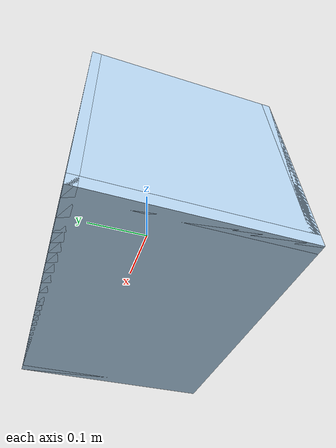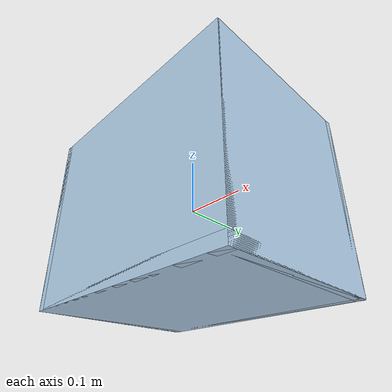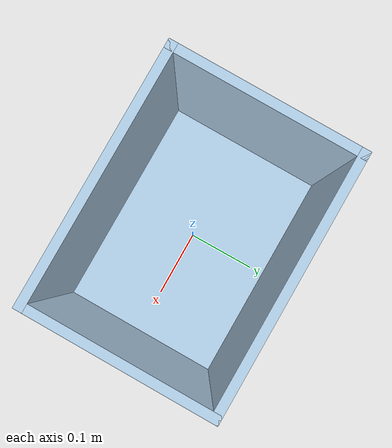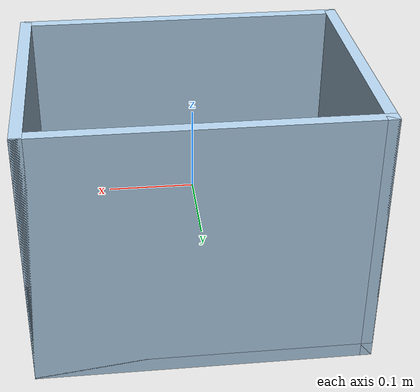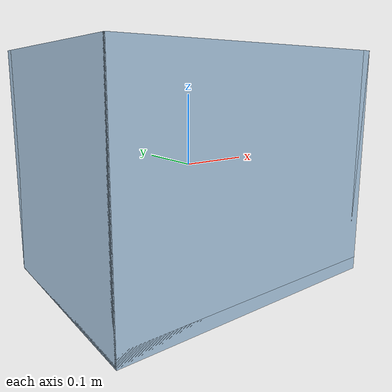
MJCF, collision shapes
<mujoco model="container_b16_40x30x32cm">
  <asset>
    <mesh name="container_b16_mesh" file="meshes/Container_B16_40x30x32cm_PR_V_NVD_01.usd" scale="1 1 1"/>
    <material name="container_b16_visual_mat" rgba="0.70 0.82 0.92 1" specular="0.25" shininess="0.18"/>
    <material name="container_b16_collision_mat" rgba="0.70 0.82 0.92 0.30" specular="0.05" shininess="0.05"/>
  </asset>

  <worldbody>
    <body>
      <body name="object">
        <inertial pos="0 0 0" mass="0.35" diaginertia="0.0040 0.0060 0.0070"/>

        <geom name="visual"
              type="mesh"
              mesh="container_b16_mesh"
              material="container_b16_visual_mat"
              contype="0"
              conaffinity="0"
              group="1"/>

        <geom name="container_b16_col_bottom" type="box"
              pos="0 0 -0.151"
              size="0.20 0.15 0.009"
              material="container_b16_collision_mat"
              friction="1.0 0.005 0.0001"
              group="0"/>
        <geom name="container_b16_col_front" type="box"
              pos="0 -0.143 0"
              size="0.20 0.007 0.16"
              material="container_b16_collision_mat"
              friction="1.0 0.005 0.0001"
              group="0"/>
        <geom name="container_b16_col_back" type="box"
              pos="0 0.143 0"
              size="0.20 0.007 0.16"
              material="container_b16_collision_mat"
              friction="1.0 0.005 0.0001"
              group="0"/>
        <geom name="container_b16_col_left" type="box"
              pos="-0.193 0 0"
              size="0.007 0.15 0.16"
              material="container_b16_collision_mat"
              friction="1.0 0.005 0.0001"
              group="0"/>
        <geom name="container_b16_col_right" type="box"
              pos="0.193 0 0"
              size="0.007 0.15 0.16"
              material="container_b16_collision_mat"
              friction="1.0 0.005 0.0001"
              group="0"/>
      </body>
      <site rgba="0 0 0 0" size="0.005" pos="0 0 -0.16" name="bottom_site"/>
      <site rgba="0 0 0 0" size="0.005" pos="0 0 0.16" name="top_site"/>
      <site rgba="0 0 0 0" size="0.005" pos="0.20 0.15 0" name="horizontal_radius_site"/>
    </body>
  </worldbody>
</mujoco>
